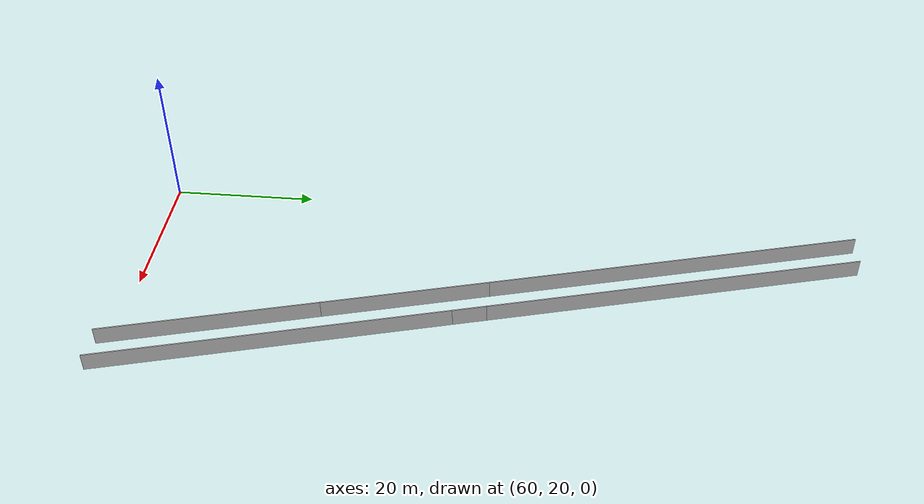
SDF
<?xml version="1.0" ?>
<sdf version="1.6">
  <model name="sps_0302">
    <pose frame="">0 0 0 0 -0 0</pose>
    <static>1</static>
    <self_collide>0</self_collide>
    <allow_auto_disable>0</allow_auto_disable>
    <link name="Wall91">
      <kinematic>0</kinematic>
      <gravity>1</gravity>
      <self_collide>0</self_collide>
      <collision name="collision">
        <geometry>
          <box>
            <size>47.1996 0.15 2.5</size>
          </box>
        </geometry>
        <pose frame="">0 0 0 0 -0 0</pose>
      </collision>
      <visual name="visual">
        <geometry>
          <box>
            <size>47.1996 0.15 2.5</size>
          </box>
        </geometry>
        <pose frame="">0 0 0 0 -0 0</pose>
        <cast_shadows>1</cast_shadows>
        <transparency>0.0</transparency>
      </visual>
      <pose frame="">90.5462 40.6971 1.25 0 -0 1.83122</pose>
    </link>
    <link name="Wall92">
      <kinematic>0</kinematic>
      <gravity>1</gravity>
      <self_collide>0</self_collide>
      <collision name="collision">
        <geometry>
          <box>
            <size>4.5452 0.15 2.5</size>
          </box>
        </geometry>
        <pose frame="">0 0 0 0 -0 0</pose>
      </collision>
      <visual name="visual">
        <geometry>
          <box>
            <size>4.5452 0.15 2.5</size>
          </box>
        </geometry>
        <pose frame="">0 0 0 0 -0 0</pose>
        <cast_shadows>1</cast_shadows>
        <transparency>0.0</transparency>
      </visual>
      <pose frame="">83.8843 65.6971 1.25 0 -0 1.83122</pose>
    </link>
    <link name="Wall93">
      <kinematic>0</kinematic>
      <gravity>1</gravity>
      <self_collide>0</self_collide>
      <collision name="collision">
        <geometry>
          <box>
            <size>51.7448 0.15 2.5</size>
          </box>
        </geometry>
        <pose frame="">0 0 0 0 -0 0</pose>
      </collision>
      <visual name="visual">
        <geometry>
          <box>
            <size>51.7448 0.15 2.5</size>
          </box>
        </geometry>
        <pose frame="">0 0 0 0 -0 0</pose>
        <cast_shadows>1</cast_shadows>
        <transparency>0.0</transparency>
      </visual>
      <pose frame="">76.6371 92.8931 1.25 0 -0 1.83122</pose>
    </link>
    <link name="Wall497">
      <kinematic>0</kinematic>
      <gravity>1</gravity>
      <self_collide>0</self_collide>
      <collision name="collision">
        <geometry>
          <box>
            <size>29.1133 0.15 2.5</size>
          </box>
        </geometry>
        <pose frame="">0 0 0 0 -0 0</pose>
      </collision>
      <visual name="visual">
        <geometry>
          <box>
            <size>29.1133 0.15 2.5</size>
          </box>
        </geometry>
        <pose frame="">0 0 0 0 -0 0</pose>
        <cast_shadows>1</cast_shadows>
        <transparency>0.0</transparency>
      </visual>
      <pose frame="">88.2177 31.9589 1.25 0 -0 1.83122</pose>
    </link>
    <link name="Wall498">
      <kinematic>0</kinematic>
      <gravity>1</gravity>
      <self_collide>0</self_collide>
      <collision name="collision">
        <geometry>
          <box>
            <size>22.6316 0.15 2.5</size>
          </box>
        </geometry>
        <pose frame="">0 0 0 0 -0 0</pose>
      </collision>
      <visual name="visual">
        <geometry>
          <box>
            <size>22.6316 0.15 2.5</size>
          </box>
        </geometry>
        <pose frame="">0 0 0 0 -0 0</pose>
        <cast_shadows>1</cast_shadows>
        <transparency>0.0</transparency>
      </visual>
      <pose frame="">81.5557 56.9589 1.25 0 -0 1.83122</pose>
    </link>
    <link name="Wall499">
      <kinematic>0</kinematic>
      <gravity>1</gravity>
      <self_collide>0</self_collide>
      <collision name="collision">
        <geometry>
          <box>
            <size>51.7448 0.15 2.5</size>
          </box>
        </geometry>
        <pose frame="">0 0 0 0 -0 0</pose>
      </collision>
      <visual name="visual">
        <geometry>
          <box>
            <size>51.7448 0.15 2.5</size>
          </box>
        </geometry>
        <pose frame="">0 0 0 0 -0 0</pose>
        <cast_shadows>1</cast_shadows>
        <transparency>0.0</transparency>
      </visual>
      <pose frame="">71.9799 92.8931 1.25 0 -0 1.83122</pose>
    </link>
  </model>
</sdf>
